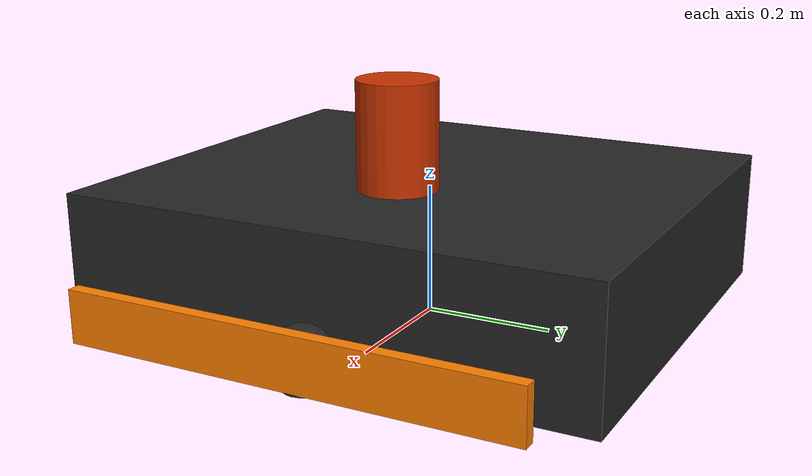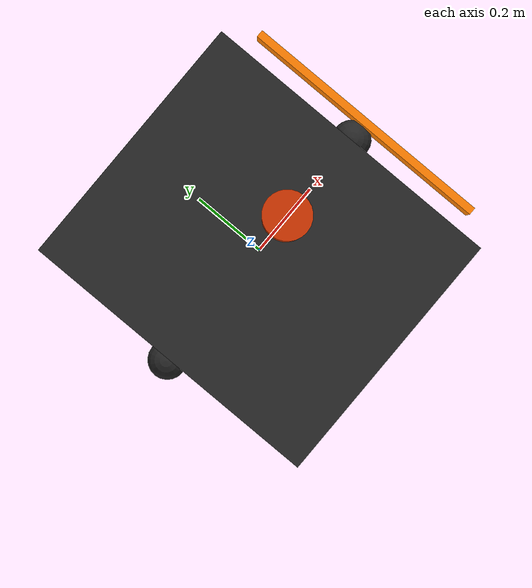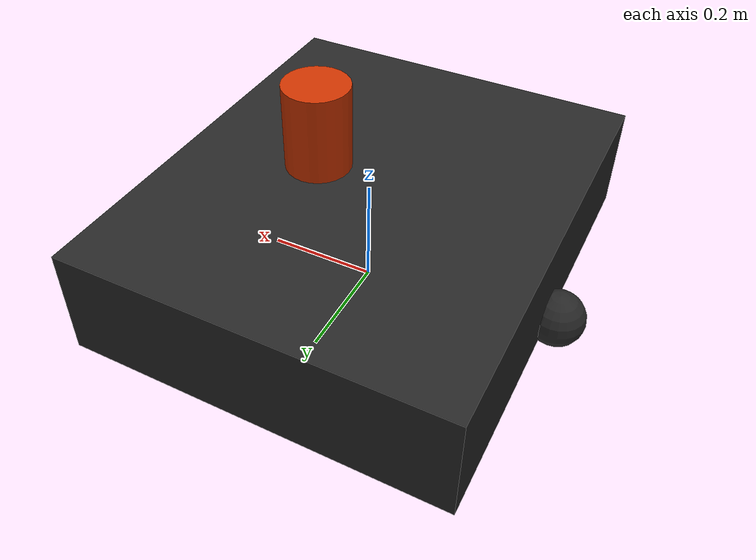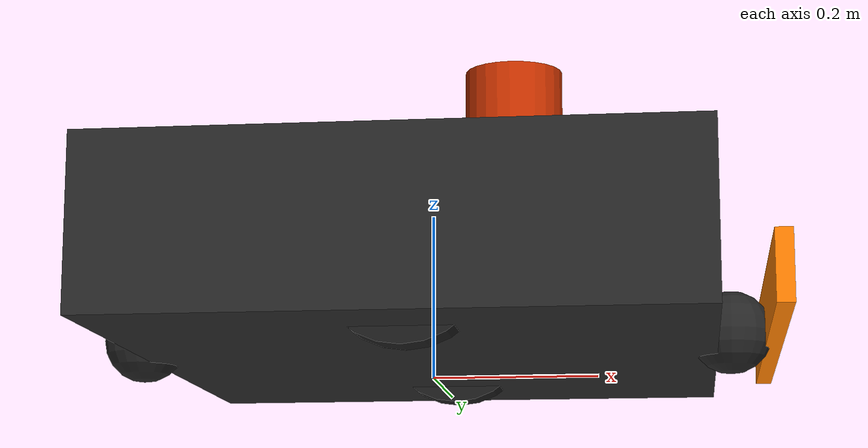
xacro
<?xml version="1.0"?>
<robot name="w102" xmlns:xacro="http://www.ros.org/wiki/xacro">

  <!-- ── Material colours ─────────────────────────────────────────────── -->
  <material name="dark_grey"><color rgba="0.15 0.15 0.15 1"/></material>
  <material name="orange">   <color rgba="1.0  0.5  0.0  1"/></material>
  <material name="red">      <color rgba="0.8  0.2  0.0  1"/></material>
  <material name="black">    <color rgba="0.1  0.1  0.1  1"/></material>

  <!-- ── base_footprint (virtual ground link; DiffDrive publishes odom→base_footprint) ── -->
  <link name="base_footprint"/>

  <joint name="base_footprint_joint" type="fixed">
    <parent link="base_footprint"/>
    <child  link="base_link"/>
    <origin xyz="0 0 0.12" rpy="0 0 0"/>
  </joint>

  <!-- ── base_link ────────────────────────────────────────────────────── -->
  <link name="base_link">
    <visual>
      <geometry><box size="0.686 0.813 0.20"/></geometry>
      <material name="dark_grey"/>
    </visual>
    <collision>
      <geometry><box size="0.686 0.813 0.20"/></geometry>
    </collision>
    <inertial>
      <mass value="15.0"/>
      <inertia ixx="0.35" ixy="0" ixz="0" iyy="0.50" iyz="0" izz="0.65"/>
    </inertial>
  </link>

  <!-- Orange front bumper stripe -->
  <link name="bumper_link">
    <visual>
      <geometry><box size="0.02 0.686 0.08"/></geometry>
      <material name="orange"/>
    </visual>
  </link>
  <joint name="bumper_joint" type="fixed">
    <parent link="base_link"/>
    <child  link="bumper_link"/>
    <origin xyz="0.41 0 -0.05" rpy="0 0 0"/>
  </joint>

  <!-- Sensor tower (red cylinder on top) -->
  <link name="sensor_tower">
    <visual>
      <geometry><cylinder radius="0.06" length="0.16"/></geometry>
      <material name="red"/>
    </visual>
  </link>
  <joint name="sensor_tower_joint" type="fixed">
    <parent link="base_link"/>
    <child  link="sensor_tower"/>
    <origin xyz="0.1 0 0.18" rpy="0 0 0"/>
  </joint>

  <!-- ── Left drive wheel ─────────────────────────────────────────────── -->
  <link name="left_wheel">
    <visual>
      <origin rpy="1.5708 0 0"/>
      <geometry><cylinder radius="0.10" length="0.05"/></geometry>
      <material name="black"/>
    </visual>
    <collision>
      <origin rpy="1.5708 0 0"/>
      <geometry><cylinder radius="0.10" length="0.05"/></geometry>
    </collision>
    <inertial>
      <mass value="1.5"/>
      <inertia ixx="0.0045" ixy="0" ixz="0" iyy="0.0045" iyz="0" izz="0.0075"/>
    </inertial>
  </link>
  <joint name="left_wheel_joint" type="continuous">
    <parent link="base_link"/>
    <child  link="left_wheel"/>
    <origin xyz="0 0.27 -0.02" rpy="0 0 0"/>
    <axis xyz="0 1 0"/>
  </joint>

  <!-- ── Right drive wheel ────────────────────────────────────────────── -->
  <link name="right_wheel">
    <visual>
      <origin rpy="1.5708 0 0"/>
      <geometry><cylinder radius="0.10" length="0.05"/></geometry>
      <material name="black"/>
    </visual>
    <collision>
      <origin rpy="1.5708 0 0"/>
      <geometry><cylinder radius="0.10" length="0.05"/></geometry>
    </collision>
    <inertial>
      <mass value="1.5"/>
      <inertia ixx="0.0045" ixy="0" ixz="0" iyy="0.0045" iyz="0" izz="0.0075"/>
    </inertial>
  </link>
  <joint name="right_wheel_joint" type="continuous">
    <parent link="base_link"/>
    <child  link="right_wheel"/>
    <origin xyz="0 -0.27 -0.02" rpy="0 0 0"/>
    <axis xyz="0 1 0"/>
  </joint>

  <!-- ── Front caster ──────────────────────────────────────────────────── -->
  <link name="caster_wheel">
    <visual>
      <geometry><sphere radius="0.05"/></geometry>
      <material name="dark_grey"/>
    </visual>
    <collision>
      <geometry><sphere radius="0.05"/></geometry>
    </collision>
    <inertial>
      <mass value="0.3"/>
      <inertia ixx="0.0003" ixy="0" ixz="0" iyy="0.0003" iyz="0" izz="0.0003"/>
    </inertial>
  </link>
  <joint name="caster_joint" type="fixed">
    <parent link="base_link"/>
    <child  link="caster_wheel"/>
    <origin xyz="0.36 0 -0.07" rpy="0 0 0"/>
  </joint>

  <!-- ── Rear caster ───────────────────────────────────────────────────── -->
  <link name="caster_rear">
    <visual>
      <geometry><sphere radius="0.05"/></geometry>
      <material name="dark_grey"/>
    </visual>
    <inertial>
      <mass value="0.3"/>
      <inertia ixx="0.0003" ixy="0" ixz="0" iyy="0.0003" iyz="0" izz="0.0003"/>
    </inertial>
  </link>
  <joint name="caster_rear_joint" type="fixed">
    <parent link="base_link"/>
    <child  link="caster_rear"/>
    <origin xyz="-0.36 0 -0.07" rpy="0 0 0"/>
  </joint>

</robot>
